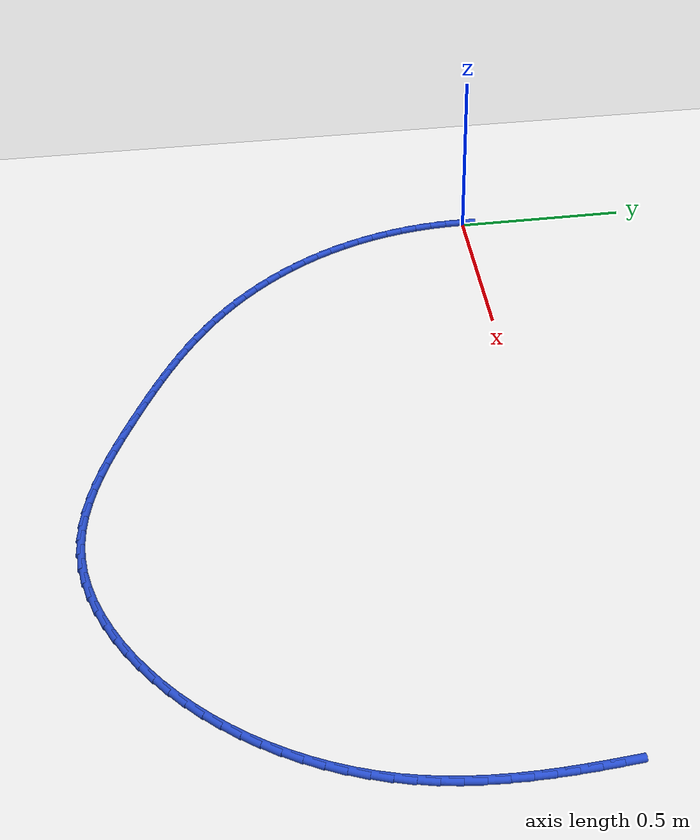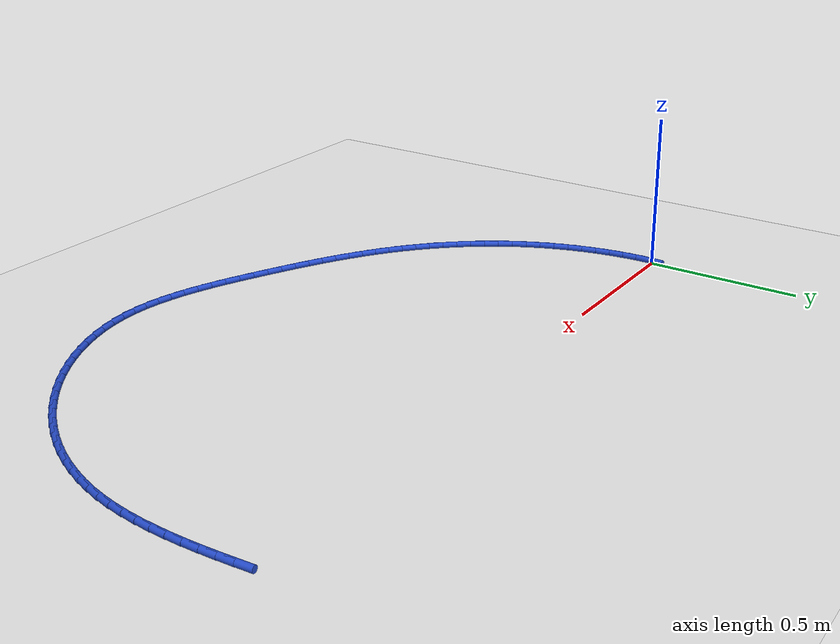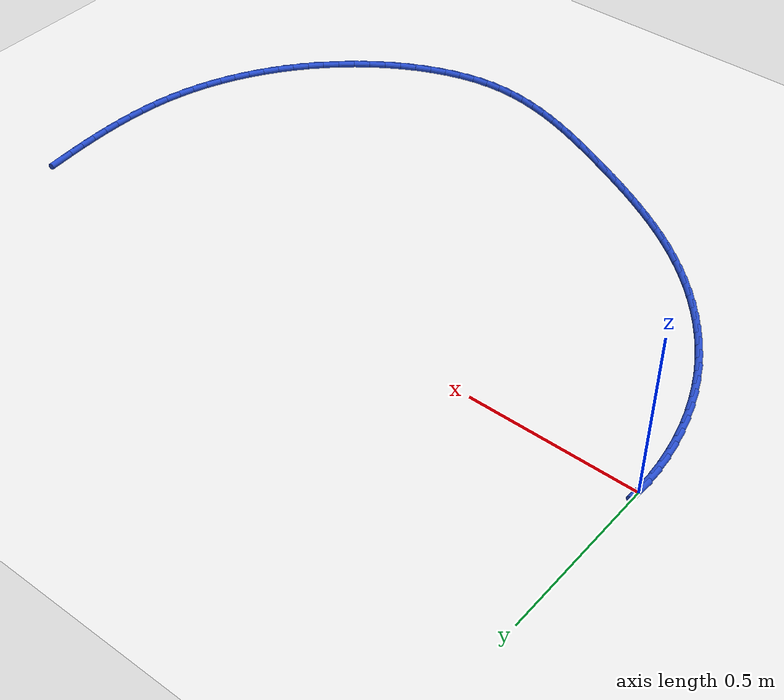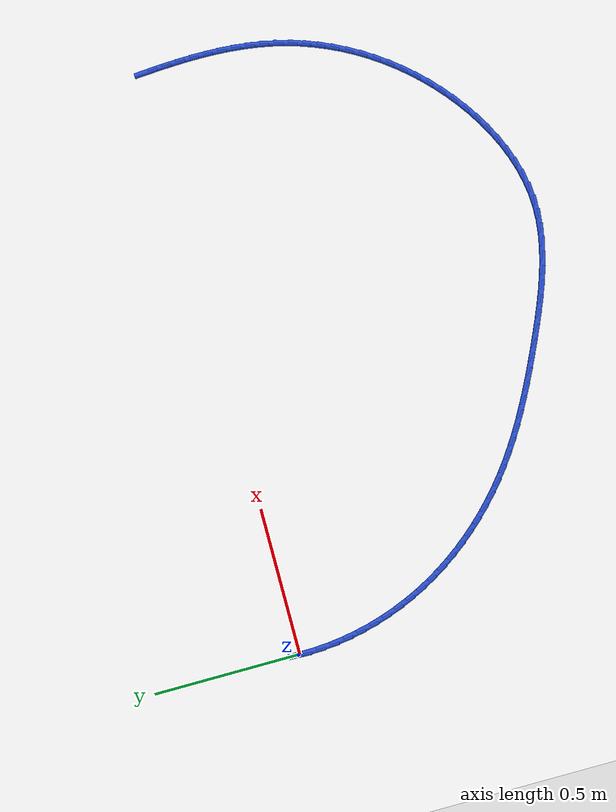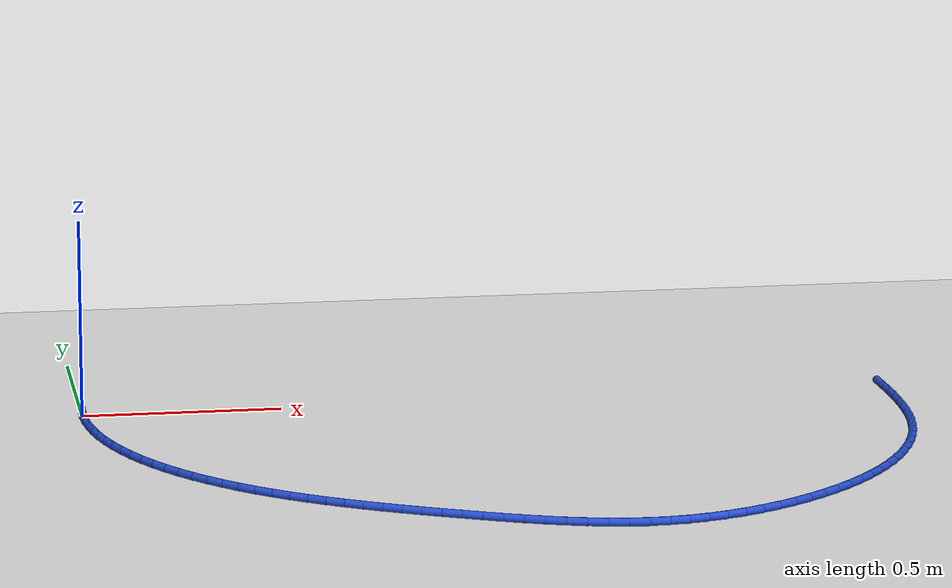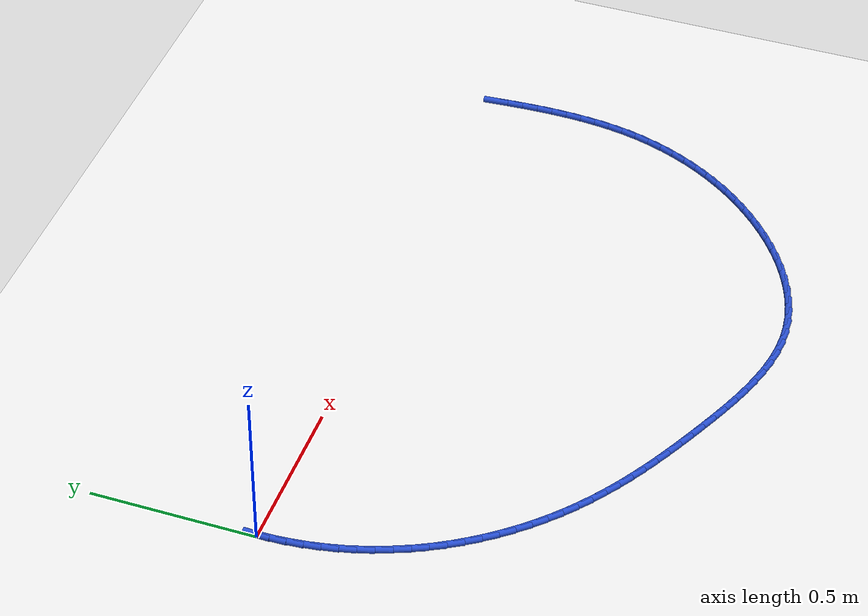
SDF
<sdf version="1.6">
 <world name="default">
  <model name="ground_plane">
   <static>1</static>
   <link name="link">
    <collision name="collision">
     <geometry><plane><normal>0 0 1</normal><size>100 100</size></plane></geometry>
     <surface><friction><ode><mu>100</mu><mu2>50</mu2></ode></friction></surface>
    </collision>
    <visual name="visual">
     <cast_shadows>0</cast_shadows>
     <geometry><plane><normal>0 0 1</normal><size>100 100</size></plane></geometry>
     <material>
      <script><uri>file://media/materials/scripts/gazebo.material</uri><name>Gazebo/WhiteGlow</name></script>
     </material>
    </visual>
   </link>
  </model>
  <model name="line">
   <link name="link_0">
    <pose>1.734723475976807e-18 2.7755575615628914e-17 0.01 0 1.57 1.5278195043209304</pose>
    <collision name="collision">
     <geometry><cylinder><radius>0.01</radius><length>0.08</length></cylinder></geometry>
    </collision>
    <visual name="visual">
     <material>
      <script><name>Gazebo/Blue</name><uri>file://media/materials/scripts/gazebo.material</uri></script>
     </material>
     <geometry><cylinder><radius>0.01</radius><length>0.08</length></cylinder></geometry>
    </visual>
   </link>
   <link name="link_70">
    <pose>2.035175168973286 -0.007607735503580903 0.01 0 1.57 -1.4999308004067775</pose>
    <collision name="collision">
     <geometry><cylinder><radius>0.01</radius><length>0.08</length></cylinder></geometry>
    </collision>
    <visual name="visual">
     <material>
      <script><name>Gazebo/Blue</name><uri>file://media/materials/scripts/gazebo.material</uri></script>
     </material>
     <geometry><cylinder><radius>0.01</radius><length>0.08</length></cylinder></geometry>
    </visual>
   </link>
   <link name="link_71">
    <pose>2.0386486267266166 -0.056540432451587415 0.01 0 1.57 -1.5164177463807949</pose>
    <collision name="collision">
     <geometry><cylinder><radius>0.01</radius><length>0.08</length></cylinder></geometry>
    </collision>
    <visual name="visual">
     <material>
      <script><name>Gazebo/Blue</name><uri>file://media/materials/scripts/gazebo.material</uri></script>
     </material>
     <geometry><cylinder><radius>0.01</radius><length>0.08</length></cylinder></geometry>
    </visual>
   </link>
   <link name="link_72">
    <pose>2.0413169999227825 -0.10556235439252819 0.01 0 1.57 -1.537015748280475</pose>
    <collision name="collision">
     <geometry><cylinder><radius>0.01</radius><length>0.08</length></cylinder></geometry>
    </collision>
    <visual name="visual">
     <material>
      <script><name>Gazebo/Blue</name><uri>file://media/materials/scripts/gazebo.material</uri></script>
     </material>
     <geometry><cylinder><radius>0.01</radius><length>0.08</length></cylinder></geometry>
    </visual>
   </link>
   <link name="link_73">
    <pose>2.0429740406618677 -0.15459675420836422 0.01 0 1.57 -1.561822518058569</pose>
    <collision name="collision">
     <geometry><cylinder><radius>0.01</radius><length>0.08</length></cylinder></geometry>
    </collision>
    <visual name="visual">
     <material>
      <script><name>Gazebo/Blue</name><uri>file://media/materials/scripts/gazebo.material</uri></script>
     </material>
     <geometry><cylinder><radius>0.01</radius><length>0.08</length></cylinder></geometry>
    </visual>
   </link>
   <link name="link_74">
    <pose>2.043413501043954 -0.20356688478105434 0.01 0 1.57 1.5506396114186878</pose>
    <collision name="collision">
     <geometry><cylinder><radius>0.01</radius><length>0.08</length></cylinder></geometry>
    </collision>
    <visual name="visual">
     <material>
      <script><name>Gazebo/Blue</name><uri>file://media/materials/scripts/gazebo.material</uri></script>
     </material>
     <geometry><cylinder><radius>0.01</radius><length>0.08</length></cylinder></geometry>
    </visual>
   </link>
   <link name="link_75">
    <pose>2.042429133169126 -0.2523959989925595 0.01 0 1.57 1.5170655100059542</pose>
    <collision name="collision">
     <geometry><cylinder><radius>0.01</radius><length>0.08</length></cylinder></geometry>
    </collision>
    <visual name="visual">
     <material>
      <script><name>Gazebo/Blue</name><uri>file://media/materials/scripts/gazebo.material</uri></script>
     </material>
     <geometry><cylinder><radius>0.01</radius><length>0.08</length></cylinder></geometry>
    </visual>
   </link>
   <link name="link_76">
    <pose>2.0398146891374678 -0.3010073497248401 0.01 0 1.57 1.4789392658281038</pose>
    <collision name="collision">
     <geometry><cylinder><radius>0.01</radius><length>0.08</length></cylinder></geometry>
    </collision>
    <visual name="visual">
     <material>
      <script><name>Gazebo/Blue</name><uri>file://media/materials/scripts/gazebo.material</uri></script>
     </material>
     <geometry><cylinder><radius>0.01</radius><length>0.08</length></cylinder></geometry>
    </visual>
   </link>
   <link name="link_77">
    <pose>2.0353639210490604 -0.34932418985985625 0.01 0 1.57 1.4361838894595038</pose>
    <collision name="collision">
     <geometry><cylinder><radius>0.01</radius><length>0.08</length></cylinder></geometry>
    </collision>
    <visual name="visual">
     <material>
      <script><name>Gazebo/Blue</name><uri>file://media/materials/scripts/gazebo.material</uri></script>
     </material>
     <geometry><cylinder><radius>0.01</radius><length>0.08</length></cylinder></geometry>
    </visual>
   </link>
   <link name="link_78">
    <pose>2.028870581003989 -0.3972697722795691 0.01 0 1.57 1.3887785797312417</pose>
    <collision name="collision">
     <geometry><cylinder><radius>0.01</radius><length>0.08</length></cylinder></geometry>
    </collision>
    <visual name="visual">
     <material>
      <script><name>Gazebo/Blue</name><uri>file://media/materials/scripts/gazebo.material</uri></script>
     </material>
     <geometry><cylinder><radius>0.01</radius><length>0.08</length></cylinder></geometry>
    </visual>
   </link>
   <link name="link_79">
    <pose>2.020128421102335 -0.4447673498659374 0.01 0 1.57 1.336805619706383</pose>
    <collision name="collision">
     <geometry><cylinder><radius>0.01</radius><length>0.08</length></cylinder></geometry>
    </collision>
    <visual name="visual">
     <material>
      <script><name>Gazebo/Blue</name><uri>file://media/materials/scripts/gazebo.material</uri></script>
     </material>
     <geometry><cylinder><radius>0.01</radius><length>0.08</length></cylinder></geometry>
    </visual>
   </link>
   <link name="link_80">
    <pose>2.008932147821717 -0.4917400929331125 0.01 0 1.57 1.2821634019810964</pose>
    <collision name="collision">
     <geometry><cylinder><radius>0.01</radius><length>0.08</length></cylinder></geometry>
    </collision>
    <visual name="visual">
     <material>
      <script><name>Gazebo/Blue</name><uri>file://media/materials/scripts/gazebo.material</uri></script>
     </material>
     <geometry><cylinder><radius>0.01</radius><length>0.08</length></cylinder></geometry>
    </visual>
   </link>
   <link name="link_81">
    <pose>1.9951657276863322 -0.5381034494775226 0.01 0 1.57 1.2280390384629372</pose>
    <collision name="collision">
     <geometry><cylinder><radius>0.01</radius><length>0.08</length></cylinder></geometry>
    </collision>
    <visual name="visual">
     <material>
      <script><name>Gazebo/Blue</name><uri>file://media/materials/scripts/gazebo.material</uri></script>
     </material>
     <geometry><cylinder><radius>0.01</radius><length>0.08</length></cylinder></geometry>
    </visual>
   </link>
   <link name="link_82">
    <pose>1.9788739149483483 -0.5837589569727059 0.01 0 1.57 1.1746938308612493</pose>
    <collision name="collision">
     <geometry><cylinder><radius>0.01</radius><length>0.08</length></cylinder></geometry>
    </collision>
    <visual name="visual">
     <material>
      <script><name>Gazebo/Blue</name><uri>file://media/materials/scripts/gazebo.material</uri></script>
     </material>
     <geometry><cylinder><radius>0.01</radius><length>0.08</length></cylinder></geometry>
    </visual>
   </link>
   <link name="link_83">
    <pose>1.960118296257099 -0.628606696640225 0.01 0 1.57 1.1220449718782362</pose>
    <collision name="collision">
     <geometry><cylinder><radius>0.01</radius><length>0.08</length></cylinder></geometry>
    </collision>
    <visual name="visual">
     <material>
      <script><name>Gazebo/Blue</name><uri>file://media/materials/scripts/gazebo.material</uri></script>
     </material>
     <geometry><cylinder><radius>0.01</radius><length>0.08</length></cylinder></geometry>
    </visual>
   </link>
   <link name="link_84">
    <pose>1.9389604582619169 -0.6725467497016451 0.01 0 1.57 1.0700007771867108</pose>
    <collision name="collision">
     <geometry><cylinder><radius>0.01</radius><length>0.08</length></cylinder></geometry>
    </collision>
    <visual name="visual">
     <material>
      <script><name>Gazebo/Blue</name><uri>file://media/materials/scripts/gazebo.material</uri></script>
     </material>
     <geometry><cylinder><radius>0.01</radius><length>0.08</length></cylinder></geometry>
    </visual>
   </link>
   <link name="link_85">
    <pose>1.9154619876121342 -0.7154791973785306 0.01 0 1.57 1.0184635226792644</pose>
    <collision name="collision">
     <geometry><cylinder><radius>0.01</radius><length>0.08</length></cylinder></geometry>
    </collision>
    <visual name="visual">
     <material>
      <script><name>Gazebo/Blue</name><uri>file://media/materials/scripts/gazebo.material</uri></script>
     </material>
     <geometry><cylinder><radius>0.01</radius><length>0.08</length></cylinder></geometry>
    </visual>
   </link>
   <link name="link_86">
    <pose>1.8896844709570848 -0.757304120892446 0.01 0 1.57 0.9673320119714794</pose>
    <collision name="collision">
     <geometry><cylinder><radius>0.01</radius><length>0.08</length></cylinder></geometry>
    </collision>
    <visual name="visual">
     <material>
      <script><name>Gazebo/Blue</name><uri>file://media/materials/scripts/gazebo.material</uri></script>
     </material>
     <geometry><cylinder><radius>0.01</radius><length>0.08</length></cylinder></geometry>
    </visual>
   </link>
   <link name="link_87">
    <pose>1.8616894949461005 -0.7979216014649562 0.01 0 1.57 0.9165038984322254</pose>
    <collision name="collision">
     <geometry><cylinder><radius>0.01</radius><length>0.08</length></cylinder></geometry>
    </collision>
    <visual name="visual">
     <material>
      <script><name>Gazebo/Blue</name><uri>file://media/materials/scripts/gazebo.material</uri></script>
     </material>
     <geometry><cylinder><radius>0.01</radius><length>0.08</length></cylinder></geometry>
    </visual>
   </link>
   <link name="link_88">
    <pose>1.831538646228515 -0.8372317203176242 0.01 0 1.57 0.8658777998154957</pose>
    <collision name="collision">
     <geometry><cylinder><radius>0.01</radius><length>0.08</length></cylinder></geometry>
    </collision>
    <visual name="visual">
     <material>
      <script><name>Gazebo/Blue</name><uri>file://media/materials/scripts/gazebo.material</uri></script>
     </material>
     <geometry><cylinder><radius>0.01</radius><length>0.08</length></cylinder></geometry>
    </visual>
   </link>
   <link name="link_89">
    <pose>1.7992935114536608 -0.875134558672015 0.01 0 1.57 0.8153552496166419</pose>
    <collision name="collision">
     <geometry><cylinder><radius>0.01</radius><length>0.08</length></cylinder></geometry>
    </collision>
    <visual name="visual">
     <material>
      <script><name>Gazebo/Blue</name><uri>file://media/materials/scripts/gazebo.material</uri></script>
     </material>
     <geometry><cylinder><radius>0.01</radius><length>0.08</length></cylinder></geometry>
    </visual>
   </link>
   <link name="link_90">
    <pose>1.7650156772708707 -0.911530197749693 0.01 0 1.57 0.7648425290024039</pose>
    <collision name="collision">
     <geometry><cylinder><radius>0.01</radius><length>0.08</length></cylinder></geometry>
    </collision>
    <visual name="visual">
     <material>
      <script><name>Gazebo/Blue</name><uri>file://media/materials/scripts/gazebo.material</uri></script>
     </material>
     <geometry><cylinder><radius>0.01</radius><length>0.08</length></cylinder></geometry>
    </visual>
   </link>
   <link name="link_91">
    <pose>1.728766730329477 -0.9463187187722233 0.01 0 1.57 0.7141890300319321</pose>
    <collision name="collision">
     <geometry><cylinder><radius>0.01</radius><length>0.08</length></cylinder></geometry>
    </collision>
    <visual name="visual">
     <material>
      <script><name>Gazebo/Blue</name><uri>file://media/materials/scripts/gazebo.material</uri></script>
     </material>
     <geometry><cylinder><radius>0.01</radius><length>0.08</length></cylinder></geometry>
    </visual>
   </link>
   <link name="link_92">
    <pose>1.6906180783202576 -0.9793874531942075 0.01 0 1.57 0.6626603777507442</pose>
    <collision name="collision">
     <geometry><cylinder><radius>0.01</radius><length>0.08</length></cylinder></geometry>
    </collision>
    <visual name="visual">
     <material>
      <script><name>Gazebo/Blue</name><uri>file://media/materials/scripts/gazebo.material</uri></script>
     </material>
     <geometry><cylinder><radius>0.01</radius><length>0.08</length></cylinder></geometry>
    </visual>
   </link>
   <link name="link_93">
    <pose>1.650716838061755 -1.01052544617939 0.01 0 1.57 0.6094389566813609</pose>
    <collision name="collision">
     <geometry><cylinder><radius>0.01</radius><length>0.08</length></cylinder></geometry>
    </collision>
    <visual name="visual">
     <material>
      <script><name>Gazebo/Blue</name><uri>file://media/materials/scripts/gazebo.material</uri></script>
     </material>
     <geometry><cylinder><radius>0.01</radius><length>0.08</length></cylinder></geometry>
    </visual>
   </link>
   <link name="link_94">
    <pose>1.6092453222341523 -1.0394760512979615 0.01 0 1.57 0.5538752249902285</pose>
    <collision name="collision">
     <geometry><cylinder><radius>0.01</radius><length>0.08</length></cylinder></geometry>
    </collision>
    <visual name="visual">
     <material>
      <script><name>Gazebo/Blue</name><uri>file://media/materials/scripts/gazebo.material</uri></script>
     </material>
     <geometry><cylinder><radius>0.01</radius><length>0.08</length></cylinder></geometry>
    </visual>
   </link>
   <link name="link_95">
    <pose>1.566386038466919 -1.065982369035143 0.01 0 1.57 0.4953138179806431</pose>
    <collision name="collision">
     <geometry><cylinder><radius>0.01</radius><length>0.08</length></cylinder></geometry>
    </collision>
    <visual name="visual">
     <material>
      <script><name>Gazebo/Blue</name><uri>file://media/materials/scripts/gazebo.material</uri></script>
     </material>
     <geometry><cylinder><radius>0.01</radius><length>0.08</length></cylinder></geometry>
    </visual>
   </link>
   <link name="link_96">
    <pose>1.5223214943895267 -1.089787499876155 0.01 0 1.57 0.4330936378045731</pose>
    <collision name="collision">
     <geometry><cylinder><radius>0.01</radius><length>0.08</length></cylinder></geometry>
    </collision>
    <visual name="visual">
     <material>
      <script><name>Gazebo/Blue</name><uri>file://media/materials/scripts/gazebo.material</uri></script>
     </material>
     <geometry><cylinder><radius>0.01</radius><length>0.08</length></cylinder></geometry>
    </visual>
   </link>
   <link name="link_97">
    <pose>1.4772341976314454 -1.1106345443062184 0.01 0 1.57 0.36655950636221524</pose>
    <collision name="collision">
     <geometry><cylinder><radius>0.01</radius><length>0.08</length></cylinder></geometry>
    </collision>
    <visual name="visual">
     <material>
      <script><name>Gazebo/Blue</name><uri>file://media/materials/scripts/gazebo.material</uri></script>
     </material>
     <geometry><cylinder><radius>0.01</radius><length>0.08</length></cylinder></geometry>
    </visual>
   </link>
   <link name="link_98">
    <pose>1.431306655822144 -1.1282666028105541 0.01 0 1.57 0.29508804348332357</pose>
    <collision name="collision">
     <geometry><cylinder><radius>0.01</radius><length>0.08</length></cylinder></geometry>
    </collision>
    <visual name="visual">
     <material>
      <script><name>Gazebo/Blue</name><uri>file://media/materials/scripts/gazebo.material</uri></script>
     </material>
     <geometry><cylinder><radius>0.01</radius><length>0.08</length></cylinder></geometry>
    </visual>
   </link>
   <link name="link_99">
    <pose>1.3847213765910937 -1.1424267758743827 0.01 0 1.57 0.2181322197309441</pose>
    <collision name="collision">
     <geometry><cylinder><radius>0.01</radius><length>0.08</length></cylinder></geometry>
    </collision>
    <visual name="visual">
     <material>
      <script><name>Gazebo/Blue</name><uri>file://media/materials/scripts/gazebo.material</uri></script>
     </material>
     <geometry><cylinder><radius>0.01</radius><length>0.08</length></cylinder></geometry>
    </visual>
   </link>
   <link name="link_100">
    <pose>1.3376608675677635 -1.1528581639829254 0.01 0 1.57 0.1352881403889898</pose>
    <collision name="collision">
     <geometry><cylinder><radius>0.01</radius><length>0.08</length></cylinder></geometry>
    </collision>
    <visual name="visual">
     <material>
      <script><name>Gazebo/Blue</name><uri>file://media/materials/scripts/gazebo.material</uri></script>
     </material>
     <geometry><cylinder><radius>0.01</radius><length>0.08</length></cylinder></geometry>
    </visual>
   </link>
   <link name="link_101">
    <pose>1.2903076363816255 -1.159303867621403 0.01 0 1.57 0.04650136917091088</pose>
    <collision name="collision">
     <geometry><cylinder><radius>0.01</radius><length>0.08</length></cylinder></geometry>
    </collision>
    <visual name="visual">
     <material>
      <script><name>Gazebo/Blue</name><uri>file://media/materials/scripts/gazebo.material</uri></script>
     </material>
     <geometry><cylinder><radius>0.01</radius><length>0.08</length></cylinder></geometry>
    </visual>
   </link>
   <link name="link_102">
    <pose>1.2428430725800304 -1.1615126271119864 0.01 0 1.57 -0.04231838243672966</pose>
    <collision name="collision">
     <geometry><cylinder><radius>0.01</radius><length>0.08</length></cylinder></geometry>
    </collision>
    <visual name="visual">
     <material>
      <script><name>Gazebo/Blue</name><uri>file://media/materials/scripts/gazebo.material</uri></script>
     </material>
     <geometry><cylinder><radius>0.01</radius><length>0.08</length></cylinder></geometry>
    </visual>
   </link>
   <link name="link_103">
    <pose>1.1953949758837261 -1.1595035009220234 0.01 0 1.57 -0.12230803176621595</pose>
    <collision name="collision">
     <geometry><cylinder><radius>0.01</radius><length>0.08</length></cylinder></geometry>
    </collision>
    <visual name="visual">
     <material>
      <script><name>Gazebo/Blue</name><uri>file://media/materials/scripts/gazebo.material</uri></script>
     </material>
     <geometry><cylinder><radius>0.01</radius><length>0.08</length></cylinder></geometry>
    </visual>
   </link>
   <link name="link_104">
    <pose>1.1480150318184361 -1.153679483226879 0.01 0 1.57 -0.192375779048116</pose>
    <collision name="collision">
     <geometry><cylinder><radius>0.01</radius><length>0.08</length></cylinder></geometry>
    </collision>
    <visual name="visual">
     <material>
      <script><name>Gazebo/Blue</name><uri>file://media/materials/scripts/gazebo.material</uri></script>
     </material>
     <geometry><cylinder><radius>0.01</radius><length>0.08</length></cylinder></geometry>
    </visual>
   </link>
   <link name="link_105">
    <pose>1.1007491283724873 -1.1444728121770387 0.01 0 1.57 -0.2525683204526985</pose>
    <collision name="collision">
     <geometry><cylinder><radius>0.01</radius><length>0.08</length></cylinder></geometry>
    </collision>
    <visual name="visual">
     <material>
      <script><name>Gazebo/Blue</name><uri>file://media/materials/scripts/gazebo.material</uri></script>
     </material>
     <geometry><cylinder><radius>0.01</radius><length>0.08</length></cylinder></geometry>
    </visual>
   </link>
   <link name="link_106">
    <pose>1.0536431535342068 -1.1323157259229868 0.01 0 1.57 -0.30325319744763346</pose>
    <collision name="collision">
     <geometry><cylinder><radius>0.01</radius><length>0.08</length></cylinder></geometry>
    </collision>
    <visual name="visual">
     <material>
      <script><name>Gazebo/Blue</name><uri>file://media/materials/scripts/gazebo.material</uri></script>
     </material>
     <geometry><cylinder><radius>0.01</radius><length>0.08</length></cylinder></geometry>
    </visual>
   </link>
   <link name="link_107">
    <pose>1.0067429952919202 -1.1176404626152074 0.01 0 1.57 -0.3449435915889601</pose>
    <collision name="collision">
     <geometry><cylinder><radius>0.01</radius><length>0.08</length></cylinder></geometry>
    </collision>
    <visual name="visual">
     <material>
      <script><name>Gazebo/Blue</name><uri>file://media/materials/scripts/gazebo.material</uri></script>
     </material>
     <geometry><cylinder><radius>0.01</radius><length>0.08</length></cylinder></geometry>
    </visual>
   </link>
   <link name="link_108">
    <pose>0.9600945416339551 -1.1008792604041857 0.01 0 1.57 -0.3781711451120306</pose>
    <collision name="collision">
     <geometry><cylinder><radius>0.01</radius><length>0.08</length></cylinder></geometry>
    </collision>
    <visual name="visual">
     <material>
      <script><name>Gazebo/Blue</name><uri>file://media/materials/scripts/gazebo.material</uri></script>
     </material>
     <geometry><cylinder><radius>0.01</radius><length>0.08</length></cylinder></geometry>
    </visual>
   </link>
   <link name="link_109">
    <pose>0.9137436805486365 -1.0824643574404051 0.01 0 1.57 -0.40340191580564394</pose>
    <collision name="collision">
     <geometry><cylinder><radius>0.01</radius><length>0.08</length></cylinder></geometry>
    </collision>
    <visual name="visual">
     <material>
      <script><name>Gazebo/Blue</name><uri>file://media/materials/scripts/gazebo.material</uri></script>
     </material>
     <geometry><cylinder><radius>0.01</radius><length>0.08</length></cylinder></geometry>
    </visual>
   </link>
   <link name="link_110">
    <pose>0.867736300024293 -1.0628279918743515 0.01 0 1.57 -0.4209835350515252</pose>
    <collision name="collision">
     <geometry><cylinder><radius>0.01</radius><length>0.08</length></cylinder></geometry>
    </collision>
    <visual name="visual">
     <material>
      <script><name>Gazebo/Blue</name><uri>file://media/materials/scripts/gazebo.material</uri></script>
     </material>
     <geometry><cylinder><radius>0.01</radius><length>0.08</length></cylinder></geometry>
    </visual>
   </link>
   <link name="link_111">
    <pose>0.8221182880492498 -1.0424024018565083 0.01 0 1.57 -0.43189290674032754</pose>
    <collision name="collision">
     <geometry><cylinder><radius>0.01</radius><length>0.08</length></cylinder></geometry>
    </collision>
    <visual name="visual">
     <material>
      <script><name>Gazebo/Blue</name><uri>file://media/materials/scripts/gazebo.material</uri></script>
     </material>
     <geometry><cylinder><radius>0.01</radius><length>0.08</length></cylinder></geometry>
    </visual>
   </link>
   <link name="link_112">
    <pose>0.7769370024710114 -1.0215777118664402 0.01 0 1.57 -0.4427264100682556</pose>
    <collision name="collision">
     <geometry><cylinder><radius>0.01</radius><length>0.08</length></cylinder></geometry>
    </collision>
    <visual name="visual">
     <material>
      <script><name>Gazebo/Blue</name><uri>file://media/materials/scripts/gazebo.material</uri></script>
     </material>
     <geometry><cylinder><radius>0.01</radius><length>0.08</length></cylinder></geometry>
    </visual>
   </link>
   <link name="link_113">
    <pose>0.732252091696929 -1.0003919034020876 0.01 0 1.57 -0.4567878856563701</pose>
    <collision name="collision">
     <geometry><cylinder><radius>0.01</radius><length>0.08</length></cylinder></geometry>
    </collision>
    <visual name="visual">
     <material>
      <script><name>Gazebo/Blue</name><uri>file://media/materials/scripts/gazebo.material</uri></script>
     </material>
     <geometry><cylinder><radius>0.01</radius><length>0.08</length></cylinder></geometry>
    </visual>
   </link>
   <link name="link_114">
    <pose>0.6881293255412152 -0.9787075704698134 0.01 0 1.57 -0.4741519410141242</pose>
    <collision name="collision">
     <geometry><cylinder><radius>0.01</radius><length>0.08</length></cylinder></geometry>
    </collision>
    <visual name="visual">
     <material>
      <script><name>Gazebo/Blue</name><uri>file://media/materials/scripts/gazebo.material</uri></script>
     </material>
     <geometry><cylinder><radius>0.01</radius><length>0.08</length></cylinder></geometry>
    </visual>
   </link>
   <link name="link_115">
    <pose>0.6446345185477905 -0.9563860255026259 0.01 0 1.57 -0.49485983472413253</pose>
    <collision name="collision">
     <geometry><cylinder><radius>0.01</radius><length>0.08</length></cylinder></geometry>
    </collision>
    <visual name="visual">
     <material>
      <script><name>Gazebo/Blue</name><uri>file://media/materials/scripts/gazebo.material</uri></script>
     </material>
     <geometry><cylinder><radius>0.01</radius><length>0.08</length></cylinder></geometry>
    </visual>
   </link>
   <link name="link_116">
    <pose>0.6018334852605769 -0.9332885809335352 0.01 0 1.57 -0.5189371724303637</pose>
    <collision name="collision">
     <geometry><cylinder><radius>0.01</radius><length>0.08</length></cylinder></geometry>
    </collision>
    <visual name="visual">
     <material>
      <script><name>Gazebo/Blue</name><uri>file://media/materials/scripts/gazebo.material</uri></script>
     </material>
     <geometry><cylinder><radius>0.01</radius><length>0.08</length></cylinder></geometry>
    </visual>
   </link>
   <link name="link_117">
    <pose>0.5597920402234957 -0.9092765491955503 0.01 0 1.57 -0.5463865395505503</pose>
    <collision name="collision">
     <geometry><cylinder><radius>0.01</radius><length>0.08</length></cylinder></geometry>
    </collision>
    <visual name="visual">
     <material>
      <script><name>Gazebo/Blue</name><uri>file://media/materials/scripts/gazebo.material</uri></script>
     </material>
     <geometry><cylinder><radius>0.01</radius><length>0.08</length></cylinder></geometry>
    </visual>
   </link>
   <link name="link_118">
    <pose>0.5185759979804698 -0.8842112427216822 0.01 0 1.57 -0.5771790353850162</pose>
    <collision name="collision">
     <geometry><cylinder><radius>0.01</radius><length>0.08</length></cylinder></geometry>
    </collision>
    <visual name="visual">
     <material>
      <script><name>Gazebo/Blue</name><uri>file://media/materials/scripts/gazebo.material</uri></script>
     </material>
     <geometry><cylinder><radius>0.01</radius><length>0.08</length></cylinder></geometry>
    </visual>
   </link>
   <link name="link_119">
    <pose>0.4782511730754203 -0.8579539739449394 0.01 0 1.57 -0.611245116951284</pose>
    <collision name="collision">
     <geometry><cylinder><radius>0.01</radius><length>0.08</length></cylinder></geometry>
    </collision>
    <visual name="visual">
     <material>
      <script><name>Gazebo/Blue</name><uri>file://media/materials/scripts/gazebo.material</uri></script>
     </material>
     <geometry><cylinder><radius>0.01</radius><length>0.08</length></cylinder></geometry>
    </visual>
   </link>
   <link name="link_120">
    <pose>0.438883380052269 -0.8303660552983321 0.01 0 1.57 -0.6484654281202387</pose>
    <collision name="collision">
     <geometry><cylinder><radius>0.01</radius><length>0.08</length></cylinder></geometry>
    </collision>
    <visual name="visual">
     <material>
      <script><name>Gazebo/Blue</name><uri>file://media/materials/scripts/gazebo.material</uri></script>
     </material>
     <geometry><cylinder><radius>0.01</radius><length>0.08</length></cylinder></geometry>
    </visual>
   </link>
   <link name="link_121">
    <pose>0.4005384334549375 -0.8013087992148693 0.01 0 1.57 -0.6886441437256099</pose>
    <collision name="collision">
     <geometry><cylinder><radius>0.01</radius><length>0.08</length></cylinder></geometry>
    </collision>
    <visual name="visual">
     <material>
      <script><name>Gazebo/Blue</name><uri>file://media/materials/scripts/gazebo.material</uri></script>
     </material>
     <geometry><cylinder><radius>0.01</radius><length>0.08</length></cylinder></geometry>
    </visual>
   </link>
   <link name="link_122">
    <pose>0.3632825614500764 -0.7706450104941063 0.01 0 1.57 -0.7306755313002867</pose>
    <collision name="collision">
     <geometry><cylinder><radius>0.01</radius><length>0.08</length></cylinder></geometry>
    </collision>
    <visual name="visual">
     <material>
      <script><name>Gazebo/Blue</name><uri>file://media/materials/scripts/gazebo.material</uri></script>
     </material>
     <geometry><cylinder><radius>0.01</radius><length>0.08</length></cylinder></geometry>
    </visual>
   </link>
   <link name="link_123">
    <pose>0.32720284089756135 -0.7383127168140636 0.01 0 1.57 -0.7732874079039136</pose>
    <collision name="collision">
     <geometry><cylinder><radius>0.01</radius><length>0.08</length></cylinder></geometry>
    </collision>
    <visual name="visual">
     <material>
      <script><name>Gazebo/Blue</name><uri>file://media/materials/scripts/gazebo.material</uri></script>
     </material>
     <geometry><cylinder><radius>0.01</radius><length>0.08</length></cylinder></geometry>
    </visual>
   </link>
   <link name="link_124">
    <pose>0.29241656788667186 -0.7043589779823275 0.01 0 1.57 -0.8165440027994516</pose>
    <collision name="collision">
     <geometry><cylinder><radius>0.01</radius><length>0.08</length></cylinder></geometry>
    </collision>
    <visual name="visual">
     <material>
      <script><name>Gazebo/Blue</name><uri>file://media/materials/scripts/gazebo.material</uri></script>
     </material>
     <geometry><cylinder><radius>0.01</radius><length>0.08</length></cylinder></geometry>
    </visual>
   </link>
   <link name="link_125">
    <pose>0.25904340755923877 -0.6688394014382321 0.01 0 1.57 -0.8606068463045192</pose>
    <collision name="collision">
     <geometry><cylinder><radius>0.01</radius><length>0.08</length></cylinder></geometry>
    </collision>
    <visual name="visual">
     <material>
      <script><name>Gazebo/Blue</name><uri>file://media/materials/scripts/gazebo.material</uri></script>
     </material>
     <geometry><cylinder><radius>0.01</radius><length>0.08</length></cylinder></geometry>
    </visual>
   </link>
   <link name="link_126">
    <pose>0.22720302505709233 -0.6318095946211112 0.01 0 1.57 -0.9056281148966401</pose>
    <collision name="collision">
     <geometry><cylinder><radius>0.01</radius><length>0.08</length></cylinder></geometry>
    </collision>
    <visual name="visual">
     <material>
      <script><name>Gazebo/Blue</name><uri>file://media/materials/scripts/gazebo.material</uri></script>
     </material>
     <geometry><cylinder><radius>0.01</radius><length>0.08</length></cylinder></geometry>
    </visual>
   </link>
   <link name="link_127">
    <pose>0.19701508552206426 -0.5933251649703001 0.01 0 1.57 -0.9517489513032458</pose>
    <collision name="collision">
     <geometry><cylinder><radius>0.01</radius><length>0.08</length></cylinder></geometry>
    </collision>
    <visual name="visual">
     <material>
      <script><name>Gazebo/Blue</name><uri>file://media/materials/scripts/gazebo.material</uri></script>
     </material>
     <geometry><cylinder><radius>0.01</radius><length>0.08</length></cylinder></geometry>
    </visual>
   </link>
   <link name="link_128">
    <pose>0.16859925409598492 -0.5534417199251324 0.01 0 1.57 -0.999097111252129</pose>
    <collision name="collision">
     <geometry><cylinder><radius>0.01</radius><length>0.08</length></cylinder></geometry>
    </collision>
    <visual name="visual">
     <material>
      <script><name>Gazebo/Blue</name><uri>file://media/materials/scripts/gazebo.material</uri></script>
     </material>
     <geometry><cylinder><radius>0.01</radius><length>0.08</length></cylinder></geometry>
    </visual>
   </link>
   <link name="link_129">
    <pose>0.14207519592068493 -0.5122148669249427 0.01 0 1.57 -1.0477839039768595</pose>
    <collision name="collision">
     <geometry><cylinder><radius>0.01</radius><length>0.08</length></cylinder></geometry>
    </collision>
    <visual name="visual">
     <material>
      <script><name>Gazebo/Blue</name><uri>file://media/materials/scripts/gazebo.material</uri></script>
     </material>
     <geometry><cylinder><radius>0.01</radius><length>0.08</length></cylinder></geometry>
    </visual>
   </link>
   <link name="link_130">
    <pose>0.11756257613799515 -0.46970021340906476 0.01 0 1.57 -1.0978981990056944</pose>
    <collision name="collision">
     <geometry><cylinder><radius>0.01</radius><length>0.08</length></cylinder></geometry>
    </collision>
    <visual name="visual">
     <material>
      <script><name>Gazebo/Blue</name><uri>file://media/materials/scripts/gazebo.material</uri></script>
     </material>
     <geometry><cylinder><radius>0.01</radius><length>0.08</length></cylinder></geometry>
    </visual>
   </link>
   <link name="link_131">
    <pose>0.09518098993753596 -0.4259534714023946 0.01 0 1.57 -1.1488986720456673</pose>
    <collision name="collision">
     <geometry><cylinder><radius>0.01</radius><length>0.08</length></cylinder></geometry>
    </collision>
    <visual name="visual">
     <material>
      <script><name>Gazebo/Blue</name><uri>file://media/materials/scripts/gazebo.material</uri></script>
     </material>
     <geometry><cylinder><radius>0.01</radius><length>0.08</length></cylinder></geometry>
    </visual>
   </link>
   <link name="link_132">
    <pose>0.07503039830383078 -0.38105970803347 0.01 0 1.57 -1.1994997979019548</pose>
    <collision name="collision">
     <geometry><cylinder><radius>0.01</radius><length>0.08</length></cylinder></geometry>
    </collision>
    <visual name="visual">
     <material>
      <script><name>Gazebo/Blue</name><uri>file://media/materials/scripts/gazebo.material</uri></script>
     </material>
     <geometry><cylinder><radius>0.01</radius><length>0.08</length></cylinder></geometry>
    </visual>
   </link>
   <link name="link_133">
    <pose>0.057164321650601535 -0.3351734237367427 0.01 0 1.57 -1.2497523863041904</pose>
    <collision name="collision">
     <geometry><cylinder><radius>0.01</radius><length>0.08</length></cylinder></geometry>
    </collision>
    <visual name="visual">
     <material>
      <script><name>Gazebo/Blue</name><uri>file://media/materials/scripts/gazebo.material</uri></script>
     </material>
     <geometry><cylinder><radius>0.01</radius><length>0.08</length></cylinder></geometry>
    </visual>
   </link>
   <link name="link_134">
    <pose>0.04162956706676105 -0.28845915603981775 0.01 0 1.57 -1.2999249299161741</pose>
    <collision name="collision">
     <geometry><cylinder><radius>0.01</radius><length>0.08</length></cylinder></geometry>
    </collision>
    <visual name="visual">
     <material>
      <script><name>Gazebo/Blue</name><uri>file://media/materials/scripts/gazebo.material</uri></script>
     </material>
     <geometry><cylinder><radius>0.01</radius><length>0.08</length></cylinder></geometry>
    </visual>
   </link>
   <link name="link_135">
    <pose>0.028472941641221952 -0.24108144247029933 0.01 0 1.57 -1.3502882024856302</pose>
    <collision name="collision">
     <geometry><cylinder><radius>0.01</radius><length>0.08</length></cylinder></geometry>
    </collision>
    <visual name="visual">
     <material>
      <script><name>Gazebo/Blue</name><uri>file://media/materials/scripts/gazebo.material</uri></script>
     </material>
     <geometry><cylinder><radius>0.01</radius><length>0.08</length></cylinder></geometry>
    </visual>
   </link>
   <link name="link_136">
    <pose>0.01774125246289747 -0.19320482055579416 0.01 0 1.57 -1.4011146891448543</pose>
    <collision name="collision">
     <geometry><cylinder><radius>0.01</radius><length>0.08</length></cylinder></geometry>
    </collision>
    <visual name="visual">
     <material>
      <script><name>Gazebo/Blue</name><uri>file://media/materials/scripts/gazebo.material</uri></script>
     </material>
     <geometry><cylinder><radius>0.01</radius><length>0.08</length></cylinder></geometry>
    </visual>
   </link>
   <link name="link_137">
    <pose>0.009481306620700207 -0.14499382782390663 0.01 0 1.57 -1.452677853991942</pose>
    <collision name="collision">
     <geometry><cylinder><radius>0.01</radius><length>0.08</length></cylinder></geometry>
    </collision>
    <visual name="visual">
     <material>
      <script><name>Gazebo/Blue</name><uri>file://media/materials/scripts/gazebo.material</uri></script>
     </material>
     <geometry><cylinder><radius>0.01</radius><length>0.08</length></cylinder></geometry>
    </visual>
   </link>
   <link name="link_138">
    <pose>0.003739911203542985 -0.09661300180224176 0.01 0 1.57 -1.505250914517404</pose>
    <collision name="collision">
     <geometry><cylinder><radius>0.01</radius><length>0.08</length></cylinder></geometry>
    </collision>
    <visual name="visual">
     <material>
      <script><name>Gazebo/Blue</name><uri>file://media/materials/scripts/gazebo.material</uri></script>
     </material>
     <geometry><cylinder><radius>0.01</radius><length>0.08</length></cylinder></geometry>
    </visual>
   </link>
   <link name="link_139">
    <pose>0.0005638733003386371 -0.04822688001840473 0.01 0 1.57 -1.5591047637610693</pose>
    <collision name="collision">
     <geometry><cylinder><radius>0.01</radius><length>0.08</length></cylinder></geometry>
    </collision>
    <visual name="visual">
     <material>
      <script><name>Gazebo/Blue</name><uri>file://media/materials/scripts/gazebo.material</uri></script>
     </material>
     <geometry><cylinder><radius>0.01</radius><length>0.08</length></cylinder></geometry>
    </visual>
   </link>
  </model>
 </world>
</sdf>
